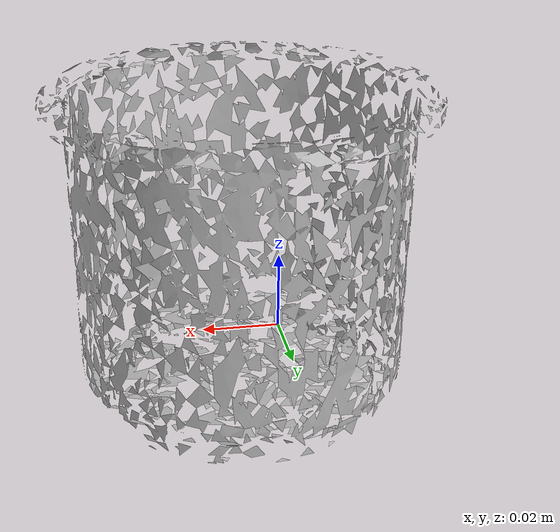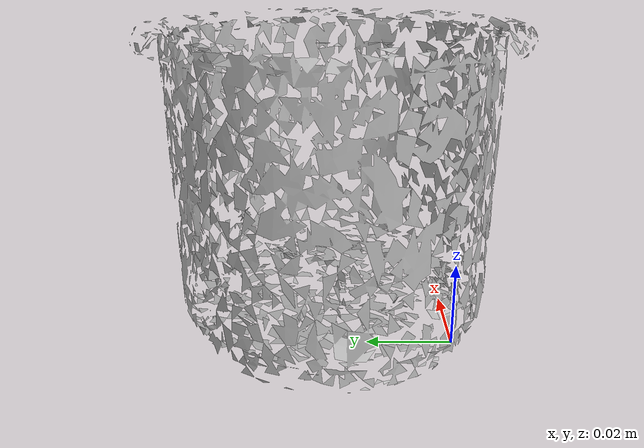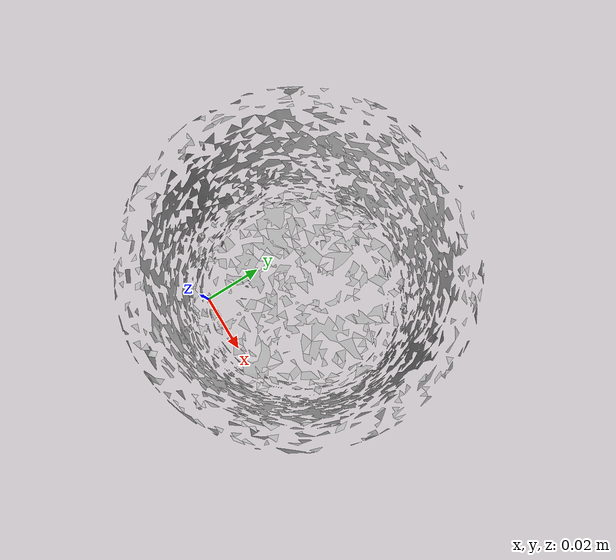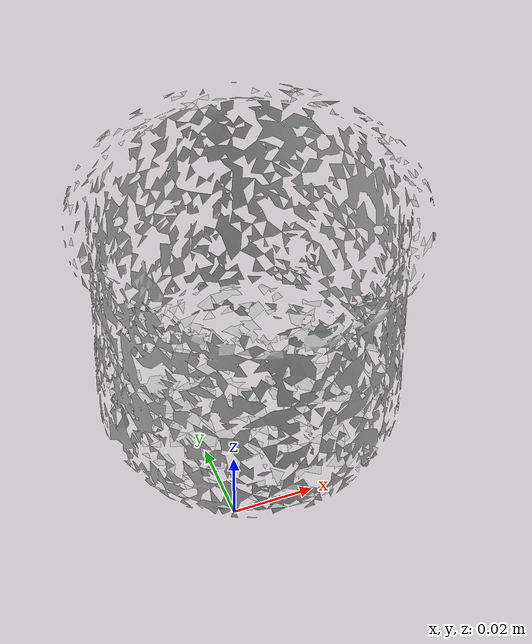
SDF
<?xml version='1.0'?>
<sdf version="1.4">
  <model name="g_cups">
    <static>false</static>
    <link name="link">
      <inertial>
        <pose>0.012934602057724176 0.028094809623552288 0.03487435287003049 -2.6148162660284107 -1.2688604946737516 2.8469785263354184</pose>
        <mass>4.526128588154451e-05</mass>
        <inertia>
          <ixx>5.650425124689807e-08</ixx>
          <ixy>-7.46347581003062e-24</ixy>
          <ixz>1.2010818884213424e-23</ixz>
          <iyy>5.3162470017881243e-08</iyy>
          <iyz>9.295693856138225e-24</iyz>
          <izz>5.2382244079594347e-08</izz>
        </inertia>
      </inertial>
      <collision name="collision">
        <geometry>
          <mesh>
            <!-- Use a downsampled mesh for collisions -->
            <uri>model://065-g_cups/downsampled.obj</uri>
	        </mesh>
        </geometry>
        <surface>
      </surface>
      </collision>
      <visual name="visual">
        <geometry>
          <mesh>
            <uri>model://065-g_cups/google_16k/textured.obj</uri>
	        </mesh>
        </geometry>
        <material>
          <script>
            <uri>model://065-g_cups/g_cups.material</uri>
            <name>g_cups</name>
          </script>
        </material>
      </visual>
    </link>
  </model>
</sdf>
